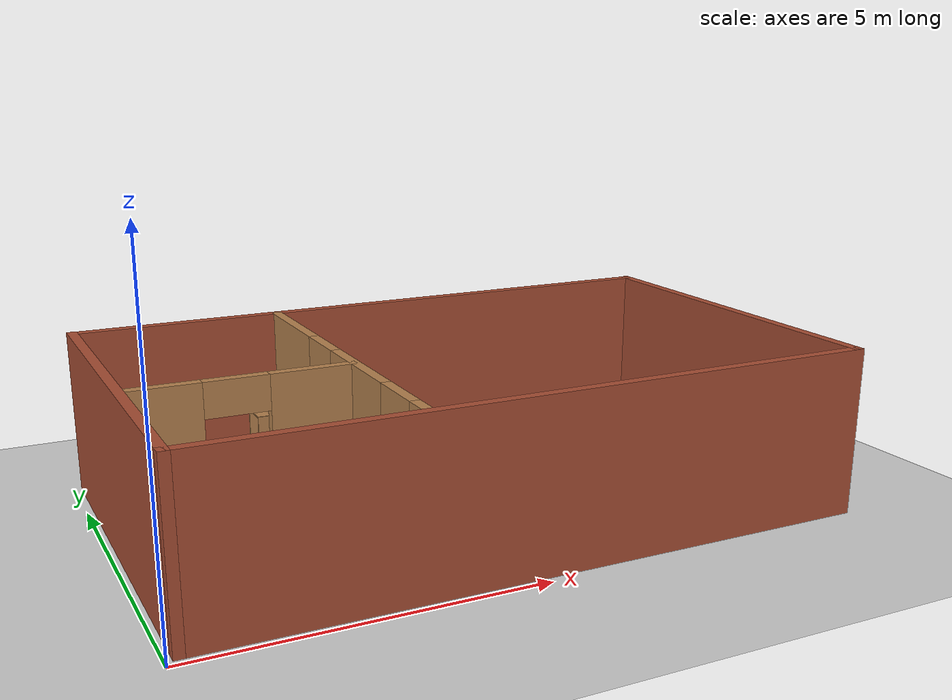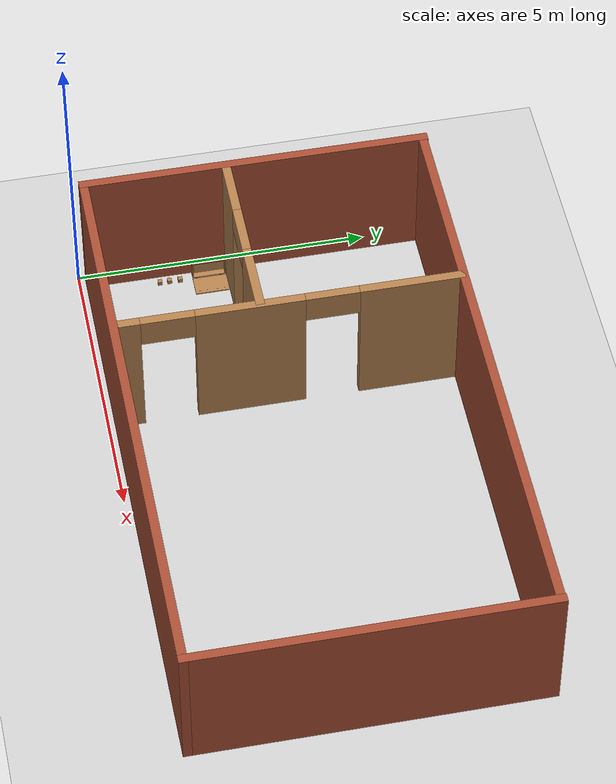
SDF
<sdf version="1.7">
 <world name="default">
  <light name="sun" type="directional">
   <pose>0 0 10 0 -0 0</pose>
   <diffuse>0.8 0.8 0.8 1</diffuse>
   <specular>0.2 0.2 0.2 1</specular>
   <attenuation>
    <range>1000</range>
    <constant>0.9</constant>
    <linear>0.01</linear>
    <quadratic>0.001</quadratic>
   </attenuation>
   <direction>-0.5 0.1 -0.9</direction>
   <spot><inner_angle>0</inner_angle><outer_angle>0</outer_angle><falloff>0</falloff></spot>
  </light>
  <model name="ground_plane">
   <static>1</static>
   <link name="link">
    <collision name="collision">
     <geometry><plane><normal>0 0 1</normal><size>100 100</size></plane></geometry>
     <surface><friction><ode><mu>100</mu><mu2>50</mu2></ode></friction></surface>
    </collision>
    <visual name="visual">
     <cast_shadows>0</cast_shadows>
     <geometry><plane><normal>0 0 1</normal><size>100 100</size></plane></geometry>
     <material>
      <script><uri>file://media/materials/scripts/gazebo.material</uri><name>Gazebo/Grey</name></script>
     </material>
    </visual>
   </link>
  </model>
  <gravity>0 0 -9.8</gravity>
  <magnetic_field>6e-06 2.3e-05 -4.2e-05</magnetic_field>
  <atmosphere type="adiabatic"/>
  <physics type="ode">
   <max_step_size>0.001</max_step_size>
   <real_time_factor>1</real_time_factor>
   <real_time_update_rate>1000</real_time_update_rate>
  </physics>
  <scene><ambient>0.4 0.4 0.4 1</ambient><background>0.7 0.7 0.7 1</background><shadows>1</shadows></scene>
  <audio><device>default</device></audio>
  <spherical_coordinates>
   <surface_model>EARTH_WGS84</surface_model>
   <latitude_deg>0</latitude_deg>
   <longitude_deg>0</longitude_deg>
   <elevation>0</elevation>
   <heading_deg>0</heading_deg>
  </spherical_coordinates>
  <model name="plane_1">
   <pose>5.09237 3.08624 0 0 -0 0</pose>
   <link name="Wall_0">
    <collision name="Wall_0_Collision">
     <geometry><box><size>5.95815 0.15 2.5</size></box></geometry>
     <pose>0 0 1.25 0 -0 0</pose>
    </collision>
    <visual name="Wall_0_Visual">
     <pose>0 0 1.25 0 -0 0</pose>
     <geometry><box><size>5.95815 0.15 2.5</size></box></geometry>
     <material>
      <script><uri>file://media/materials/scripts/gazebo.material</uri><name>Gazebo/Bricks</name></script>
      <ambient>0.996078 0.47451 0.0196078 1</ambient>
     </material>
     <meta><layer>0</layer></meta>
    </visual>
    <pose>-4.925 0 0 0 -0 1.5708</pose>
   </link>
   <link name="Wall_1">
    <collision name="Wall_1_Collision">
     <geometry><box><size>10 0.15 2.5</size></box></geometry>
     <pose>0 0 1.25 0 -0 0</pose>
    </collision>
    <visual name="Wall_1_Visual">
     <pose>0 0 1.25 0 -0 0</pose>
     <geometry><box><size>10 0.15 2.5</size></box></geometry>
     <material>
      <script><uri>file://media/materials/scripts/gazebo.material</uri><name>Gazebo/Bricks</name></script>
      <ambient>1 1 1 1</ambient>
     </material>
     <meta><layer>0</layer></meta>
    </visual>
    <pose>0 2.88887 0 0 -0 0</pose>
   </link>
   <link name="Wall_2">
    <collision name="Wall_2_Collision">
     <geometry><box><size>5.95815 0.15 2.5</size></box></geometry>
     <pose>0 0 1.25 0 -0 0</pose>
    </collision>
    <visual name="Wall_2_Visual">
     <pose>0 0 1.25 0 -0 0</pose>
     <geometry><box><size>5.95815 0.15 2.5</size></box></geometry>
     <material>
      <script><uri>file://media/materials/scripts/gazebo.material</uri><name>Gazebo/Bricks</name></script>
      <ambient>1 1 1 1</ambient>
     </material>
     <meta><layer>0</layer></meta>
    </visual>
    <pose>4.925 0 0 0 -0 -1.5708</pose>
   </link>
   <link name="Wall_3">
    <collision name="Wall_3_Collision">
     <geometry><box><size>10 0.15 2.5</size></box></geometry>
     <pose>0 0 1.25 0 -0 0</pose>
    </collision>
    <visual name="Wall_3_Visual">
     <pose>0 0 1.25 0 -0 0</pose>
     <geometry><box><size>10 0.15 2.5</size></box></geometry>
     <material>
      <script><uri>file://media/materials/scripts/gazebo.material</uri><name>Gazebo/Bricks</name></script>
      <ambient>1 1 1 1</ambient>
     </material>
     <meta><layer>0</layer></meta>
    </visual>
    <pose>0 -2.90408 0 0 -0 3.14159</pose>
   </link>
   <link name="Wall_5">
    <pose>-1.754 0.041726 0 0 -0 1.5708</pose>
    <visual name="Wall_5_Visual_0">
     <pose>-2.69071 0 1.25 0 -0 0</pose>
     <geometry><box><size>0.368588 0.15 2.5</size></box></geometry>
     <material>
      <script><uri>file://media/materials/scripts/gazebo.material</uri><name>Gazebo/Wood</name></script>
      <ambient>1 1 1 1</ambient>
     </material>
     <meta><layer>0</layer></meta>
    </visual>
    <collision name="Wall_5_Collision_0">
     <geometry><box><size>0.368588 0.15 2.5</size></box></geometry>
     <pose>-2.69071 0 1.25 0 -0 0</pose>
    </collision>
    <visual name="Wall_5_Visual_1">
     <pose>-0.695381 0 1.25 0 -0 0</pose>
     <geometry><box><size>1.82206 0.15 2.5</size></box></geometry>
     <material>
      <script><uri>file://media/materials/scripts/gazebo.material</uri><name>Gazebo/Wood</name></script>
      <ambient>1 1 1 1</ambient>
     </material>
     <meta><layer>0</layer></meta>
    </visual>
    <collision name="Wall_5_Collision_1">
     <geometry><box><size>1.82206 0.15 2.5</size></box></geometry>
     <pose>-0.695381 0 1.25 0 -0 0</pose>
    </collision>
    <visual name="Wall_5_Visual_2">
     <pose>1.99533 0 1.25 0 -0 0</pose>
     <geometry><box><size>1.75935 0.15 2.5</size></box></geometry>
     <material>
      <script><uri>file://media/materials/scripts/gazebo.material</uri><name>Gazebo/Wood</name></script>
      <ambient>1 1 1 1</ambient>
     </material>
     <meta><layer>0</layer></meta>
    </visual>
    <collision name="Wall_5_Collision_2">
     <geometry><box><size>1.75935 0.15 2.5</size></box></geometry>
     <pose>1.99533 0 1.25 0 -0 0</pose>
    </collision>
    <visual name="Wall_5_Visual_3">
     <pose>-2.05641 0 2.25 0 -0 0</pose>
     <geometry><box><size>0.9 0.15 0.5</size></box></geometry>
     <material>
      <script><uri>file://media/materials/scripts/gazebo.material</uri><name>Gazebo/Wood</name></script>
      <ambient>1 1 1 1</ambient>
     </material>
     <meta><layer>0</layer></meta>
    </visual>
    <collision name="Wall_5_Collision_3">
     <geometry><box><size>0.9 0.15 0.5</size></box></geometry>
     <pose>-2.05641 0 2.25 0 -0 0</pose>
    </collision>
    <visual name="Wall_5_Visual_4">
     <pose>0.665649 0 2.25 0 -0 0</pose>
     <geometry><box><size>0.9 0.15 0.5</size></box></geometry>
     <material>
      <script><uri>file://media/materials/scripts/gazebo.material</uri><name>Gazebo/Wood</name></script>
      <ambient>1 1 1 1</ambient>
     </material>
     <meta><layer>0</layer></meta>
    </visual>
    <collision name="Wall_5_Collision_4">
     <geometry><box><size>0.9 0.15 0.5</size></box></geometry>
     <pose>0.665649 0 2.25 0 -0 0</pose>
    </collision>
   </link>
   <link name="Wall_7">
    <pose>-3.3605 -0.489076 0 0 -0 3.14159</pose>
    <visual name="Wall_7_Visual_0">
     <pose>-1.00762 0 1.25 0 -0 0</pose>
     <geometry><box><size>1.23476 0.15 2.5</size></box></geometry>
     <material>
      <script><uri>file://media/materials/scripts/gazebo.material</uri><name>Gazebo/Wood</name></script>
      <ambient>1 1 1 1</ambient>
     </material>
     <meta><layer>0</layer></meta>
    </visual>
    <collision name="Wall_7_Collision_0">
     <geometry><box><size>1.23476 0.15 2.5</size></box></geometry>
     <pose>-1.00762 0 1.25 0 -0 0</pose>
    </collision>
    <visual name="Wall_7_Visual_1">
     <pose>1.06738 0 1.25 0 -0 0</pose>
     <geometry><box><size>1.11524 0.15 2.5</size></box></geometry>
     <material>
      <script><uri>file://media/materials/scripts/gazebo.material</uri><name>Gazebo/Wood</name></script>
      <ambient>1 1 1 1</ambient>
     </material>
     <meta><layer>0</layer></meta>
    </visual>
    <collision name="Wall_7_Collision_1">
     <geometry><box><size>1.11524 0.15 2.5</size></box></geometry>
     <pose>1.06738 0 1.25 0 -0 0</pose>
    </collision>
    <visual name="Wall_7_Visual_2">
     <pose>0.059762 0 2.25 0 -0 0</pose>
     <geometry><box><size>0.9 0.15 0.5</size></box></geometry>
     <material>
      <script><uri>file://media/materials/scripts/gazebo.material</uri><name>Gazebo/Wood</name></script>
      <ambient>1 1 1 1</ambient>
     </material>
     <meta><layer>0</layer></meta>
    </visual>
    <collision name="Wall_7_Collision_2">
     <geometry><box><size>0.9 0.15 0.5</size></box></geometry>
     <pose>0.059762 0 2.25 0 -0 0</pose>
    </collision>
   </link>
   <static>1</static>
  </model>
  <model name="cabinet">
   <static>1</static>
   <link name="cabinet_bottom_plate">
    <inertial>
     <pose>0 0 -1 0 -0 0</pose>
     <inertia><ixx>2.05</ixx><ixy>0</ixy><ixz>0</ixz><iyy>2.05</iyy><iyz>0</iyz><izz>2.05</izz></inertia>
     <mass>25</mass>
    </inertial>
    <collision name="cabinet_bottom_plate_geom">
     <pose>0 0 0.01 0 -0 0</pose>
     <geometry><box><size>0.45 0.45 0.02</size></box></geometry>
    </collision>
    <visual name="cabinet_bottom_plate_geom_visual">
     <pose>0 0 0.01 0 -0 0</pose>
     <geometry><box><size>0.45 0.45 0.02</size></box></geometry>
     <material>
      <script><uri>file://media/materials/scripts/gazebo.material</uri><name>Gazebo/Wood</name></script>
     </material>
    </visual>
    <collision name="cabinet_bottom_plate_geom_cabinet_back_plate">
     <pose>0.235 0 0.51 0 -0 0</pose>
     <geometry><box><size>0.02 0.45 1.02</size></box></geometry>
    </collision>
    <visual name="cabinet_bottom_plate_geom_cabinet_back_plate_visual">
     <pose>0.235 0 0.51 0 -0 0</pose>
     <geometry><box><size>0.02 0.45 1.02</size></box></geometry>
     <material>
      <script><uri>file://media/materials/scripts/gazebo.material</uri><name>Gazebo/Wood</name></script>
     </material>
    </visual>
    <collision name="cabinet_bottom_plate_geom_cabinet_left_plate">
     <pose>0 0.235 0.51 0 -0 0</pose>
     <geometry><box><size>0.45 0.02 1.02</size></box></geometry>
    </collision>
    <visual name="cabinet_bottom_plate_geom_cabinet_left_plate_visual">
     <pose>0 0.235 0.51 0 -0 0</pose>
     <geometry><box><size>0.45 0.02 1.02</size></box></geometry>
     <material>
      <script><uri>file://media/materials/scripts/gazebo.material</uri><name>Gazebo/Wood</name></script>
     </material>
    </visual>
    <collision name="cabinet_bottom_plate_geom_cabinet_middle_plate">
     <pose>0 0 0.51 0 -0 0</pose>
     <geometry><box><size>0.45 0.45 0.02</size></box></geometry>
    </collision>
    <visual name="cabinet_bottom_plate_geom_cabinet_middle_plate_visual">
     <pose>0 0 0.51 0 -0 0</pose>
     <geometry><box><size>0.45 0.45 0.02</size></box></geometry>
     <material>
      <script><uri>file://media/materials/scripts/gazebo.material</uri><name>Gazebo/Wood</name></script>
     </material>
    </visual>
    <collision name="cabinet_bottom_plate_geom_cabinet_right_plate">
     <pose>0 -0.235 0.51 0 -0 0</pose>
     <geometry><box><size>0.45 0.02 1.02</size></box></geometry>
    </collision>
    <visual name="cabinet_bottom_plate_geom_cabinet_right_plate_visual">
     <pose>0 -0.235 0.51 0 -0 0</pose>
     <geometry><box><size>0.45 0.02 1.02</size></box></geometry>
     <material>
      <script><uri>file://media/materials/scripts/gazebo.material</uri><name>Gazebo/Wood</name></script>
     </material>
    </visual>
    <collision name="cabinet_bottom_plate_geom_cabinet_top_plate">
     <pose>0 0 1.01 0 -0 0</pose>
     <geometry><box><size>0.45 0.45 0.02</size></box></geometry>
    </collision>
    <visual name="cabinet_bottom_plate_geom_cabinet_top_plate_visual">
     <pose>0 0 1.01 0 -0 0</pose>
     <geometry><box><size>0.45 0.45 0.02</size></box></geometry>
     <material>
      <script><uri>file://media/materials/scripts/gazebo.material</uri><name>Gazebo/Wood</name></script>
     </material>
    </visual>
   </link>
   <pose>2.96844 5.54492 0 0 -0 0</pose>
  </model>
  <model name="cabinet_0">
   <static>1</static>
   <link name="cabinet_bottom_plate">
    <inertial>
     <pose>0 0 -1 0 -0 0</pose>
     <inertia><ixx>2.05</ixx><ixy>0</ixy><ixz>0</ixz><iyy>2.05</iyy><iyz>0</iyz><izz>2.05</izz></inertia>
     <mass>25</mass>
    </inertial>
    <collision name="cabinet_bottom_plate_geom">
     <pose>0 0 0.01 0 -0 0</pose>
     <geometry><box><size>0.45 0.45 0.02</size></box></geometry>
    </collision>
    <visual name="cabinet_bottom_plate_geom_visual">
     <pose>0 0 0.01 0 -0 0</pose>
     <geometry><box><size>0.45 0.45 0.02</size></box></geometry>
     <material>
      <script><uri>file://media/materials/scripts/gazebo.material</uri><name>Gazebo/Wood</name></script>
     </material>
    </visual>
    <collision name="cabinet_bottom_plate_geom_cabinet_back_plate">
     <pose>0.235 0 0.51 0 -0 0</pose>
     <geometry><box><size>0.02 0.45 1.02</size></box></geometry>
    </collision>
    <visual name="cabinet_bottom_plate_geom_cabinet_back_plate_visual">
     <pose>0.235 0 0.51 0 -0 0</pose>
     <geometry><box><size>0.02 0.45 1.02</size></box></geometry>
     <material>
      <script><uri>file://media/materials/scripts/gazebo.material</uri><name>Gazebo/Wood</name></script>
     </material>
    </visual>
    <collision name="cabinet_bottom_plate_geom_cabinet_left_plate">
     <pose>0 0.235 0.51 0 -0 0</pose>
     <geometry><box><size>0.45 0.02 1.02</size></box></geometry>
    </collision>
    <visual name="cabinet_bottom_plate_geom_cabinet_left_plate_visual">
     <pose>0 0.235 0.51 0 -0 0</pose>
     <geometry><box><size>0.45 0.02 1.02</size></box></geometry>
     <material>
      <script><uri>file://media/materials/scripts/gazebo.material</uri><name>Gazebo/Wood</name></script>
     </material>
    </visual>
    <collision name="cabinet_bottom_plate_geom_cabinet_middle_plate">
     <pose>0 0 0.51 0 -0 0</pose>
     <geometry><box><size>0.45 0.45 0.02</size></box></geometry>
    </collision>
    <visual name="cabinet_bottom_plate_geom_cabinet_middle_plate_visual">
     <pose>0 0 0.51 0 -0 0</pose>
     <geometry><box><size>0.45 0.45 0.02</size></box></geometry>
     <material>
      <script><uri>file://media/materials/scripts/gazebo.material</uri><name>Gazebo/Wood</name></script>
     </material>
    </visual>
    <collision name="cabinet_bottom_plate_geom_cabinet_right_plate">
     <pose>0 -0.235 0.51 0 -0 0</pose>
     <geometry><box><size>0.45 0.02 1.02</size></box></geometry>
    </collision>
    <visual name="cabinet_bottom_plate_geom_cabinet_right_plate_visual">
     <pose>0 -0.235 0.51 0 -0 0</pose>
     <geometry><box><size>0.45 0.02 1.02</size></box></geometry>
     <material>
      <script><uri>file://media/materials/scripts/gazebo.material</uri><name>Gazebo/Wood</name></script>
     </material>
    </visual>
    <collision name="cabinet_bottom_plate_geom_cabinet_top_plate">
     <pose>0 0 1.01 0 -0 0</pose>
     <geometry><box><size>0.45 0.45 0.02</size></box></geometry>
    </collision>
    <visual name="cabinet_bottom_plate_geom_cabinet_top_plate_visual">
     <pose>0 0 1.01 0 -0 0</pose>
     <geometry><box><size>0.45 0.45 0.02</size></box></geometry>
     <material>
      <script><uri>file://media/materials/scripts/gazebo.material</uri><name>Gazebo/Wood</name></script>
     </material>
    </visual>
   </link>
   <pose>2.91522 2.20753 0 0 -0 0</pose>
  </model>
  <model name="beer">
   <link name="link">
    <pose>0 0 0.115 0 -0 0</pose>
    <inertial>
     <mass>0.39</mass>
     <inertia><ixx>0.00058</ixx><ixy>0</ixy><ixz>0</ixz><iyy>0.00058</iyy><iyz>0</iyz><izz>0.00019</izz></inertia>
    </inertial>
    <collision name="collision">
     <geometry><cylinder><radius>0.055</radius><length>0.23</length></cylinder></geometry>
    </collision>
    <visual name="visual">
     <geometry><cylinder><radius>0.055</radius><length>0.23</length></cylinder></geometry>
     <material>
      <script>
       <uri>model://beer/materials/scripts</uri>
       <uri>model://beer/materials/textures</uri>
       <name>Beer/Diffuse</name>
      </script>
     </material>
    </visual>
   </link>
   <pose>2.94929 5.6542 0.519992 2.5e-05 -1.9e-05 -0.000531</pose>
  </model>
  <model name="wooden_case">
   <link name="base">
    <pose>0 0 0.024 0 -0 0</pose>
    <inertial>
     <pose>-0.022184 0 0.171592 0 -0 0</pose>
     <mass>3.96264</mass>
     <inertia>
      <ixx>0.213536</ixx>
      <ixy>0</ixy>
      <ixz>0.000779377</ixz>
      <iyy>0.0708943</iyy>
      <iyz>0</iyz>
      <izz>0.154604</izz>
     </inertia>
    </inertial>
    <collision name="collision_back">
     <pose>-0.053975 0 0.1778 0 -0 0</pose>
     <geometry><box><size>0.01905 0.5461 0.3175</size></box></geometry>
     <surface>
      <contact>
       <poissons_ratio>0.347</poissons_ratio>
       <elastic_modulus>8.8e+09</elastic_modulus>
       <ode><kp>100000</kp><kd>100</kd><max_vel>100</max_vel><min_depth>0.001</min_depth></ode>
      </contact>
      <friction>
       <torsional>
        <coefficient>1</coefficient>
        <use_patch_radius>0</use_patch_radius>
        <surface_radius>0.01</surface_radius>
       </torsional>
      </friction>
     </surface>
    </collision>
    <visual name="visual_back">
     <pose>-0.053975 0 0.1778 0 -0 0</pose>
     <geometry><box><size>0.01905 0.5461 0.3175</size></box></geometry>
     <material>
      <script><uri>file://media/materials/scripts/gazebo.material</uri><name>Gazebo/Wood</name></script>
     </material>
    </visual>
    <collision name="collision_bottom">
     <pose>0 0 0.009525 0 -0 0</pose>
     <geometry><box><size>0.127 0.5842 0.01905</size></box></geometry>
     <surface>
      <contact>
       <poissons_ratio>0.347</poissons_ratio>
       <elastic_modulus>8.8e+09</elastic_modulus>
       <ode><kp>100000</kp><kd>100</kd><max_vel>100</max_vel><min_depth>0.001</min_depth></ode>
      </contact>
      <friction>
       <torsional>
        <coefficient>1</coefficient>
        <use_patch_radius>0</use_patch_radius>
        <surface_radius>0.01</surface_radius>
       </torsional>
      </friction>
     </surface>
    </collision>
    <visual name="visual_bottom">
     <pose>0 0 0.009525 0 -0 0</pose>
     <geometry><box><size>0.127 0.5842 0.01905</size></box></geometry>
     <material>
      <script><uri>file://media/materials/scripts/gazebo.material</uri><name>Gazebo/Wood</name></script>
     </material>
    </visual>
    <collision name="collision_top">
     <pose>0 0 0.346075 0 -0 0</pose>
     <geometry><box><size>0.127 0.5842 0.01905</size></box></geometry>
     <surface>
      <contact>
       <poissons_ratio>0.347</poissons_ratio>
       <elastic_modulus>8.8e+09</elastic_modulus>
       <ode><kp>100000</kp><kd>100</kd><max_vel>100</max_vel><min_depth>0.001</min_depth></ode>
      </contact>
      <friction>
       <torsional>
        <coefficient>1</coefficient>
        <use_patch_radius>0</use_patch_radius>
        <surface_radius>0.01</surface_radius>
       </torsional>
      </friction>
     </surface>
    </collision>
    <visual name="visual_top">
     <pose>0 0 0.346075 0 -0 0</pose>
     <geometry><box><size>0.127 0.5842 0.01905</size></box></geometry>
     <material>
      <script><uri>file://media/materials/scripts/gazebo.material</uri><name>Gazebo/Wood</name></script>
     </material>
    </visual>
    <collision name="collision_left">
     <pose>0 -0.282575 0.1778 0 -0 0</pose>
     <geometry><box><size>0.127 0.01905 0.3175</size></box></geometry>
     <surface>
      <contact>
       <poissons_ratio>0.347</poissons_ratio>
       <elastic_modulus>8.8e+09</elastic_modulus>
       <ode><kp>100000</kp><kd>100</kd><max_vel>100</max_vel><min_depth>0.001</min_depth></ode>
      </contact>
      <friction>
       <torsional>
        <coefficient>1</coefficient>
        <use_patch_radius>0</use_patch_radius>
        <surface_radius>0.01</surface_radius>
       </torsional>
      </friction>
     </surface>
    </collision>
    <visual name="visual_left">
     <pose>0 -0.282575 0.1778 0 -0 0</pose>
     <geometry><box><size>0.127 0.01905 0.3175</size></box></geometry>
     <material>
      <script><uri>file://media/materials/scripts/gazebo.material</uri><name>Gazebo/Wood</name></script>
     </material>
    </visual>
    <collision name="collision_right">
     <pose>0 0.282575 0.1778 0 -0 0</pose>
     <geometry><box><size>0.127 0.01905 0.3175</size></box></geometry>
     <surface>
      <contact>
       <poissons_ratio>0.347</poissons_ratio>
       <elastic_modulus>8.8e+09</elastic_modulus>
       <ode><kp>100000</kp><kd>100</kd><max_vel>100</max_vel><min_depth>0.001</min_depth></ode>
      </contact>
      <friction>
       <torsional>
        <coefficient>1</coefficient>
        <use_patch_radius>0</use_patch_radius>
        <surface_radius>0.01</surface_radius>
       </torsional>
      </friction>
     </surface>
    </collision>
    <visual name="visual_right">
     <pose>0 0.282575 0.1778 0 -0 0</pose>
     <geometry><box><size>0.127 0.01905 0.3175</size></box></geometry>
     <material>
      <script><uri>file://media/materials/scripts/gazebo.material</uri><name>Gazebo/Wood</name></script>
     </material>
    </visual>
    <collision name="collision_block_left">
     <pose>0.0095 -0.2151 -0.012 0 -0 0</pose>
     <geometry><box><size>0.108 0.05 0.024</size></box></geometry>
     <surface>
      <contact>
       <poissons_ratio>0.347</poissons_ratio>
       <elastic_modulus>8.8e+09</elastic_modulus>
       <ode><kp>100000</kp><kd>100</kd><max_vel>100</max_vel><min_depth>0.001</min_depth></ode>
      </contact>
      <friction>
       <torsional>
        <coefficient>1</coefficient>
        <use_patch_radius>0</use_patch_radius>
        <surface_radius>0.01</surface_radius>
       </torsional>
      </friction>
     </surface>
    </collision>
    <visual name="visual_block_left">
     <pose>0.0095 -0.2151 -0.012 0 -0 0</pose>
     <geometry><box><size>0.108 0.05 0.024</size></box></geometry>
     <material>
      <script><uri>file://media/materials/scripts/gazebo.material</uri><name>Gazebo/Wood</name></script>
     </material>
    </visual>
    <collision name="collision_block_right">
     <pose>0.0095 0.2151 -0.012 0 -0 0</pose>
     <geometry><box><size>0.108 0.05 0.024</size></box></geometry>
     <surface>
      <contact>
       <poissons_ratio>0.347</poissons_ratio>
       <elastic_modulus>8.8e+09</elastic_modulus>
       <ode><kp>100000</kp><kd>100</kd><max_vel>100</max_vel><min_depth>0.001</min_depth></ode>
      </contact>
      <friction>
       <torsional>
        <coefficient>1</coefficient>
        <use_patch_radius>0</use_patch_radius>
        <surface_radius>0.01</surface_radius>
       </torsional>
      </friction>
     </surface>
    </collision>
    <visual name="visual_block_right">
     <pose>0.0095 0.2151 -0.012 0 -0 0</pose>
     <geometry><box><size>0.108 0.05 0.024</size></box></geometry>
     <material>
      <script><uri>file://media/materials/scripts/gazebo.material</uri><name>Gazebo/Wood</name></script>
     </material>
    </visual>
   </link>
   <link name="lid">
    <pose>0.243775 0 0.009525 0 -0 0</pose>
    <inertial>
     <mass>1.97874</mass>
     <inertia>
      <ixx>0.0563367</ixx>
      <ixy>0</ixy>
      <ixz>0</ixz>
      <iyy>0.020911</iyy>
      <iyz>0</iyz>
      <izz>0.0771281</izz>
     </inertia>
    </inertial>
    <collision name="collision">
     <geometry><box><size>0.3556 0.5842 0.01905</size></box></geometry>
     <surface>
      <contact>
       <poissons_ratio>0.347</poissons_ratio>
       <elastic_modulus>8.8e+09</elastic_modulus>
       <ode><kp>100000</kp><kd>100</kd><max_vel>100</max_vel><min_depth>0.001</min_depth></ode>
      </contact>
      <friction>
       <torsional>
        <coefficient>1</coefficient>
        <use_patch_radius>0</use_patch_radius>
        <surface_radius>0.01</surface_radius>
       </torsional>
      </friction>
     </surface>
    </collision>
    <visual name="visual">
     <geometry><box><size>0.3556 0.5842 0.01905</size></box></geometry>
     <material>
      <script><uri>file://media/materials/scripts/gazebo.material</uri><name>Gazebo/Wood</name></script>
     </material>
    </visual>
    <visual name="tee_nut_1">
     <pose>0.122 -0.216 0 0 -0 0</pose>
     <geometry><cylinder><radius>0.00635</radius><length>0.0192405</length></cylinder></geometry>
     <material>
      <script><uri>file://media/materials/scripts/gazebo.material</uri><name>Gazebo/Grey</name></script>
     </material>
    </visual>
    <visual name="tee_nut_2">
     <pose>0.122 -0.088 0 0 -0 0</pose>
     <geometry><cylinder><radius>0.00635</radius><length>0.0192405</length></cylinder></geometry>
     <material>
      <script><uri>file://media/materials/scripts/gazebo.material</uri><name>Gazebo/Grey</name></script>
     </material>
    </visual>
    <visual name="tee_nut_3">
     <pose>0.122 0.088 0 0 -0 0</pose>
     <geometry><cylinder><radius>0.00635</radius><length>0.0192405</length></cylinder></geometry>
     <material>
      <script><uri>file://media/materials/scripts/gazebo.material</uri><name>Gazebo/Grey</name></script>
     </material>
    </visual>
    <visual name="tee_nut_4">
     <pose>0.122 0.216 0 0 -0 0</pose>
     <geometry><cylinder><radius>0.00635</radius><length>0.0192405</length></cylinder></geometry>
     <material>
      <script><uri>file://media/materials/scripts/gazebo.material</uri><name>Gazebo/Grey</name></script>
     </material>
    </visual>
   </link>
   <joint name="lid_hinge" type="revolute">
    <pose>-0.1778 0 0.01905 0 -0 0</pose>
    <parent>base</parent>
    <child>lid</child>
    <axis>
     <xyz>0 1 0</xyz>
     <limit><upper>0.523599</upper><lower>-1.5708</lower></limit>
     <dynamics><spring_reference>0</spring_reference><spring_stiffness>0</spring_stiffness></dynamics>
    </axis>
   </joint>
   <pose>0.337644 2.2233 -0.001057 0 -0.000429 0</pose>
  </model>
  <model name="wood_cube_7_5cm">
   <link name="link">
    <pose>0 0 0.0375 0 -0 0</pose>
    <inertial>
     <mass>0.2249</mass>
     <inertia>
      <ixx>0.000210844</ixx>
      <ixy>0</ixy>
      <ixz>0</ixz>
      <iyy>0.000210844</iyy>
      <iyz>0</iyz>
      <izz>0.000210844</izz>
     </inertia>
    </inertial>
    <collision name="collision">
     <geometry><box><size>0.075 0.075 0.075</size></box></geometry>
     <surface>
      <contact>
       <poissons_ratio>0.347</poissons_ratio>
       <elastic_modulus>8.8e+09</elastic_modulus>
       <ode><kp>100000</kp><kd>100</kd><max_vel>100</max_vel><min_depth>0.001</min_depth></ode>
      </contact>
      <friction>
       <torsional>
        <coefficient>1</coefficient>
        <use_patch_radius>0</use_patch_radius>
        <surface_radius>0.01</surface_radius>
       </torsional>
      </friction>
     </surface>
    </collision>
    <visual name="visual">
     <geometry><box><size>0.075 0.075 0.075</size></box></geometry>
     <material>
      <script><uri>file://media/materials/scripts/gazebo.material</uri><name>Gazebo/Wood</name></script>
     </material>
    </visual>
   </link>
   <pose>0.395826 1.7135 -0.001005 0 -0 0</pose>
  </model>
  <model name="wood_cube_7_5cm_0">
   <link name="link">
    <pose>0 0 0.0375 0 -0 0</pose>
    <inertial>
     <mass>0.2249</mass>
     <inertia>
      <ixx>0.000210844</ixx>
      <ixy>0</ixy>
      <ixz>0</ixz>
      <iyy>0.000210844</iyy>
      <iyz>0</iyz>
      <izz>0.000210844</izz>
     </inertia>
    </inertial>
    <collision name="collision">
     <geometry><box><size>0.075 0.075 0.075</size></box></geometry>
     <surface>
      <contact>
       <poissons_ratio>0.347</poissons_ratio>
       <elastic_modulus>8.8e+09</elastic_modulus>
       <ode><kp>100000</kp><kd>100</kd><max_vel>100</max_vel><min_depth>0.001</min_depth></ode>
      </contact>
      <friction>
       <torsional>
        <coefficient>1</coefficient>
        <use_patch_radius>0</use_patch_radius>
        <surface_radius>0.01</surface_radius>
       </torsional>
      </friction>
     </surface>
    </collision>
    <visual name="visual">
     <geometry><box><size>0.075 0.075 0.075</size></box></geometry>
     <material>
      <script><uri>file://media/materials/scripts/gazebo.material</uri><name>Gazebo/Wood</name></script>
     </material>
    </visual>
   </link>
   <pose>0.390693 1.52713 -0.001005 0 -0 0</pose>
  </model>
  <model name="wood_cube_7_5cm_1">
   <link name="link">
    <pose>0 0 0.0375 0 -0 0</pose>
    <inertial>
     <mass>0.2249</mass>
     <inertia>
      <ixx>0.000210844</ixx>
      <ixy>0</ixy>
      <ixz>0</ixz>
      <iyy>0.000210844</iyy>
      <iyz>0</iyz>
      <izz>0.000210844</izz>
     </inertia>
    </inertial>
    <collision name="collision">
     <geometry><box><size>0.075 0.075 0.075</size></box></geometry>
     <surface>
      <contact>
       <poissons_ratio>0.347</poissons_ratio>
       <elastic_modulus>8.8e+09</elastic_modulus>
       <ode><kp>100000</kp><kd>100</kd><max_vel>100</max_vel><min_depth>0.001</min_depth></ode>
      </contact>
      <friction>
       <torsional>
        <coefficient>1</coefficient>
        <use_patch_radius>0</use_patch_radius>
        <surface_radius>0.01</surface_radius>
       </torsional>
      </friction>
     </surface>
    </collision>
    <visual name="visual">
     <geometry><box><size>0.075 0.075 0.075</size></box></geometry>
     <material>
      <script><uri>file://media/materials/scripts/gazebo.material</uri><name>Gazebo/Wood</name></script>
     </material>
    </visual>
   </link>
   <pose>0.393922 1.36166 -0.001005 0 -0 0</pose>
  </model>
 </world>
</sdf>
